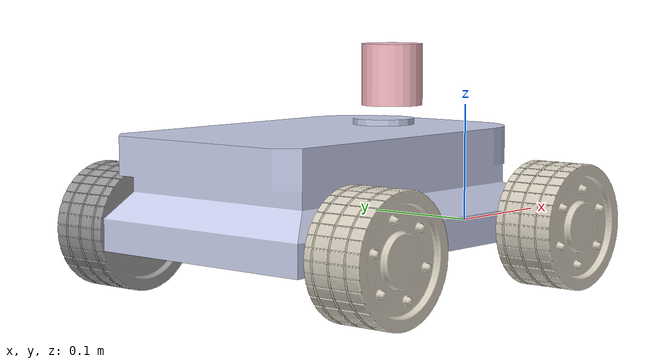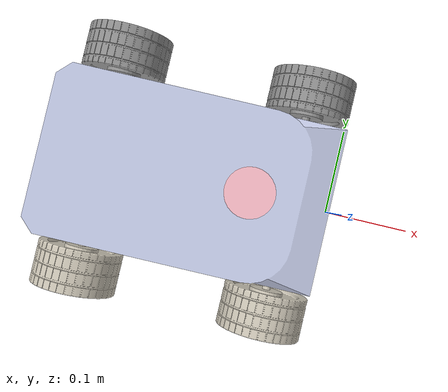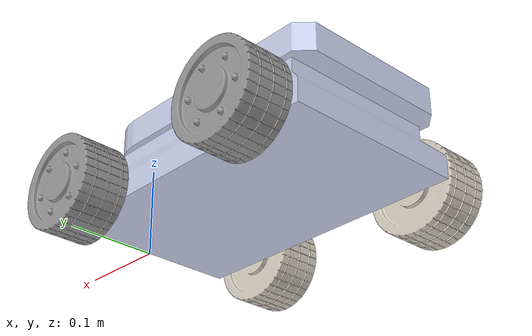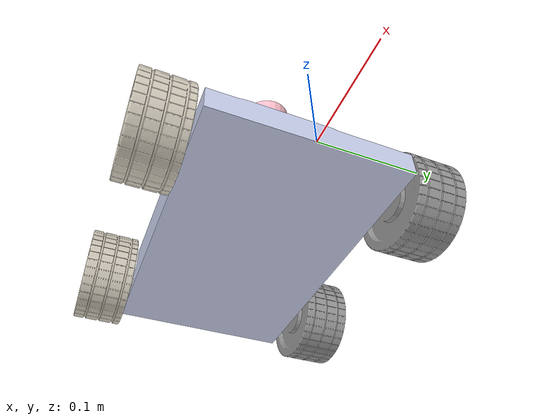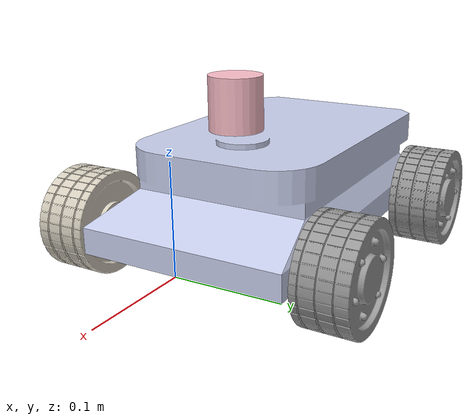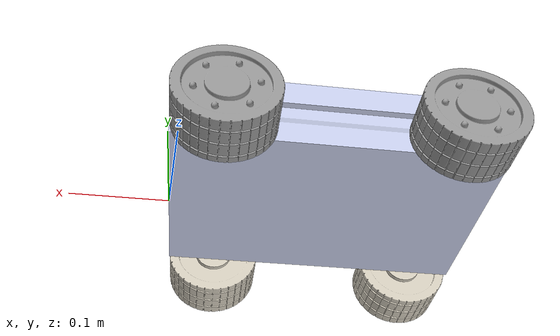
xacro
<?xml version="1.0" encoding="utf-8"?>
<robot name="proj7" xmlns:xacro="http://www.ros.org/wiki/xacro">

<xacro:include filename="$(find proj7)/urdf/gazebo_refs_xArm.xacro" />
<xacro:include filename="$(find proj7)/urdf/transmission_xArm.xacro" />
<link name="base_link">
    <inertial>
      <origin xyz="0 0 0.035" rpy="0 0 0"/>
      <mass value="0.8"/>
      <inertia ixx="0.001" ixy="0" ixz="0" iyy="0.001" iyz="0" izz="0.001"/>
    </inertial>
    <visual>
      <origin xyz="0 0 0" rpy="0 0 0"/>
      <geometry>
        <mesh filename="package://proj7/meshes/base_link.STL" scale="0.5 0.5 0.5"/>
      </geometry>
      <material name="">
      <color rgba="0.792156862745098 0.819607843137255 0.933333333333333 1" />
    </material>
    </visual>
    <collision>
      <origin xyz="0 0 0" rpy="0 0 0"/>
      <geometry>
        <mesh filename="package://proj7/meshes/base_link.STL" scale="0.5 0.5 0.5"/>
      </geometry>
    </collision>
  </link>
<link name="wheel1">
    <inertial>
      <origin xyz="0.065 0.072 0" rpy="0 0 0"/>
      <mass value="0.2"/>
      <inertia ixx="0.0001" ixy="0" ixz="0" iyy="0.0001" iyz="0" izz="0.0001"/>
    </inertial>
    <visual>
      <origin xyz="0.0 0 0" rpy="0 0 0"/>
      <geometry>
        <mesh filename="package://proj7/meshes/wheel1.STL" scale="0.5 0.5 0.5"/>
      </geometry>
      <material name="">
      <color rgba="0.843137254901961 0.815686274509804 0.752941176470588 1" />
    </material>
    </visual>
    <collision>
      <origin xyz="0 0 0" rpy="0 0 0"/>
      <geometry>
        <mesh filename="package://proj7/meshes/wheel1.STL" scale="0.5 0.5 0.5"/>
      </geometry>
    </collision>
  </link>
  <joint name="fr_joint" type="continuous">
    <origin xyz="-0.05 -0.09 0.0125" rpy="0 0 0"/>
    <parent link="base_link"/>
    <child link="wheel1"/>
    <axis xyz="0 1 0"/>
  </joint>

  <link name="wheel2">
    <inertial>
      <origin xyz="0.065 -0.072 0" rpy="0 0 0"/>
      <mass value="0.2"/>
      <inertia ixx="0.0001" ixy="0" ixz="0" iyy="0.0001" iyz="0" izz="0.0001"/>
    </inertial>
    <visual>
      <origin xyz="0 0 0" rpy="0 0 0"/>
      <geometry>
        <mesh filename="package://proj7/meshes/wheel2.STL" scale="0.5 0.5 0.5"/>
      </geometry>
    </visual>
    <collision>
      <origin xyz="0 0 0" rpy="0 0 0"/>
      <geometry>
        <mesh filename="package://proj7/meshes/wheel2.STL" scale="0.5 0.5 0.5"/>
      </geometry>
    </collision>
  </link>
  <joint name="fl_joint" type="continuous">
    <origin xyz="-0.05 0.09 0.0125" rpy="0 0 0"/>
    <parent link="base_link"/>
    <child link="wheel2"/>
    <axis xyz="0 1 0"/>
  </joint>

  <link name="wheel3">
    <inertial>
      <origin xyz="-0.065 0.072 0" rpy="0 0 0"/>
      <mass value="0.2"/>
      <inertia ixx="0.0001" ixy="0" ixz="0" iyy="0.0001" iyz="0" izz="0.0001"/>
    </inertial>
    <visual>
      <origin xyz="0 0 0" rpy="0 0 0"/>
      <geometry>
        <mesh filename="package://proj7/meshes/wheel3.STL" scale="0.5 0.5 0.5"/>
      </geometry>
      <material name="">
      <color rgba="0.843137254901961 0.815686274509804 0.752941176470588 1" />
    </material>
    </visual>
    <collision>
      <origin xyz="0 0 0" rpy="0 0 0"/>
      <geometry>
        <mesh filename="package://proj7/meshes/wheel3.STL" scale="0.5 0.5 0.5"/>
      </geometry>
    </collision>
  </link>
  <joint name="rr_joint" type="continuous">
    <origin xyz="-0.275 -0.09 0.0125" rpy="0 0 0"/>
    <parent link="base_link"/>
    <child link="wheel3"/>
    <axis xyz="0 1 0"/>
  </joint>
  <link name="wheel4">
    <inertial>
      <origin xyz="-0.065 -0.072 0" rpy="0 0 0"/>
      <mass value="0.2"/>
      <inertia ixx="0.0001" ixy="0" ixz="0" iyy="0.0001" iyz="0" izz="0.0001"/>
    </inertial>
    <visual>
      <origin xyz="0 0 0" rpy="0 0 0"/>
      <geometry>
        <mesh filename="package://proj7/meshes/wheel4.STL" scale="0.5 0.5 0.5" />
      </geometry>
    </visual>
    <collision>
      <origin xyz="0 0 0" rpy="0 0 0"/>
      <geometry>
        <mesh filename="package://proj7/meshes/wheel4.STL" scale="0.5 0.5 0.5" />
      </geometry>
    </collision>
  </link>
  <joint name="rl_joint" type="continuous">
    <origin xyz="-0.275 0.09 0.0125" rpy="0 0 0"/>
    <parent link="base_link"/>
    <child link="wheel4"/>
    <axis xyz="0 1 0"/>
  </joint>
   <!-- LIDAR Sensor Link -->
  <link name="lidar_link">
    <inertial>
      <mass value="0.05"/>
      <inertia ixx="1e-6" ixy="0" ixz="0" iyy="1e-6" iyz="0" izz="1e-6"/>
    </inertial>
    <visual>
      <origin xyz="0 0 0" rpy="0 0 0"/>
      <geometry>
        <cylinder length="0.05" radius="0.025"/>
      </geometry>
      <material name="light_pink">
        <color rgba="1.0 0.7529 0.7961 1.0"/>
      </material>
      <gazebo reference="lidar_link">
        <material>
          <ambient>1 0.7529 0.7961 1</ambient>
        </material>
        <sensor name="laser" type="ray">
        <pose> 0 0 0 0 0 0 </pose>
        <visualize>true</visualize>
        <update_rate>10</update_rate>
        <ray>
          <scan>
            <horizontal>
              <samples>360</samples>
              <min_angle>-3.14</min_angle>
              <max_angle>3.14</max_angle>
            </horizontal>
          </scan>
          <range>
            <min>0.3</min>
            <max>12</max>
          </range>
        </ray>
        <plugin name="laser_controller" filename="libgazebo_ros_laser.so">
          <topicName>/scan</topicName>
          <frameName>lidar_link</frameName>
        </plugin>

        </sensor>
      </gazebo>
    </visual>
    <collision>
      <origin xyz="0 0 0" rpy="0 0 0"/>
      <geometry>
        <cylinder length="0.05" radius="0.025"/>
      </geometry>
    </collision>
  </link>
    <!-- Joint to attach LIDAR to Base Link -->
  <joint name="lidar_joint" type="fixed">
    <parent link="base_link"/>
    <child link="lidar_link"/>
    <origin xyz="-0.1 0 0.13" rpy="0 0 0"/>
  </joint>

</robot>
